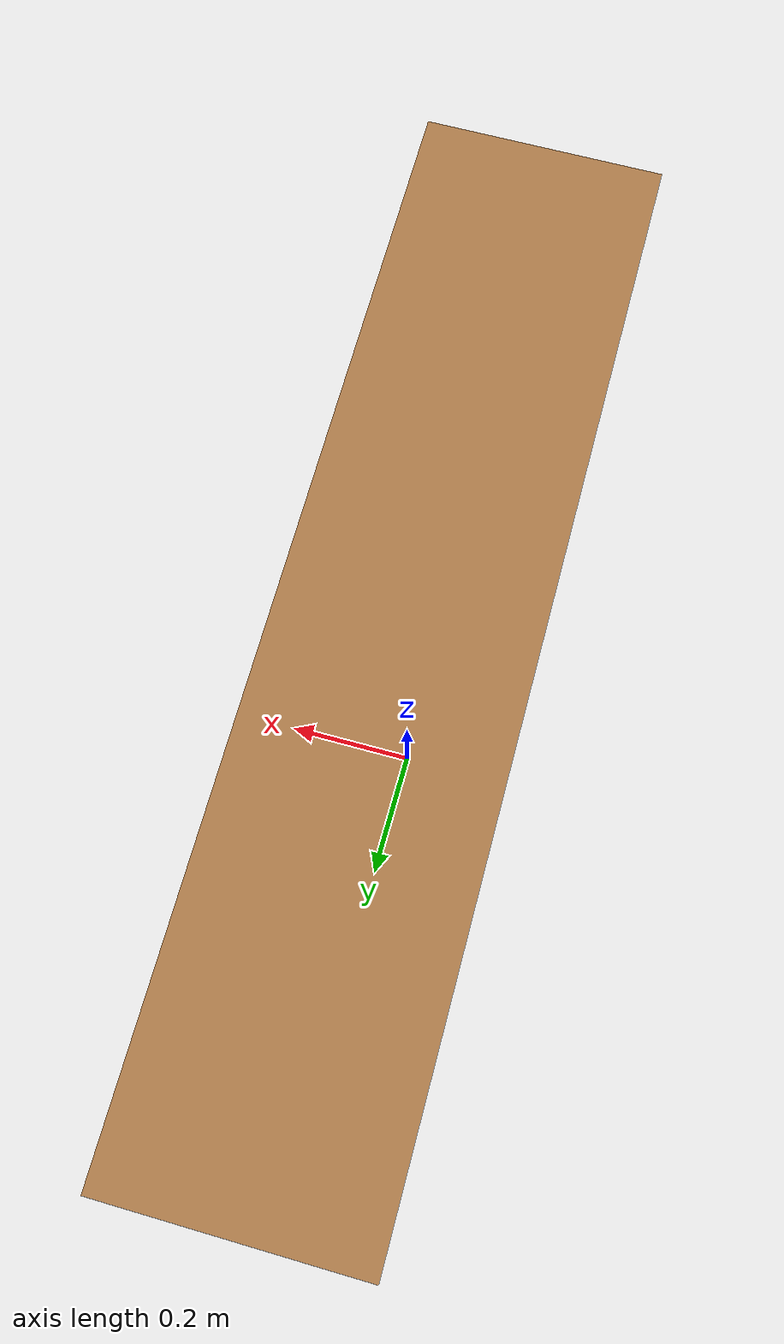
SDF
<?xml version='1.0'?>
<sdf version='1.7'>
  <model name='wall_s'>
    <pose>0 0 0 0 -0 0</pose>
    <link name='Wall_0'>
      <collision name='Wall_0_Collision'>
        <geometry>
          <box>
            <size>1.3 0.3 0.7</size>
          </box>
        </geometry>
        <pose>0 0 0.35 0 -0 0</pose>
      </collision>
      <visual name='Wall_0_Visual'>
        <pose>0 0 0.35 0 -0 0</pose>
        <geometry>
          <box>
            <size>1.3 0.3 0.7</size>
          </box>
        </geometry>
        <material>
          <script>
            <uri>file://media/materials/scripts/gazebo.material</uri>
            <name>Gazebo/Wood</name>
          </script>
          <ambient>1 1 1 1</ambient>
        </material>
        <meta>
          <layer>0</layer>
        </meta>
      </visual>
      <pose>0 0 0 0 -0 -1.5708</pose>
    </link>
    <static>1</static>
  </model>
</sdf>
